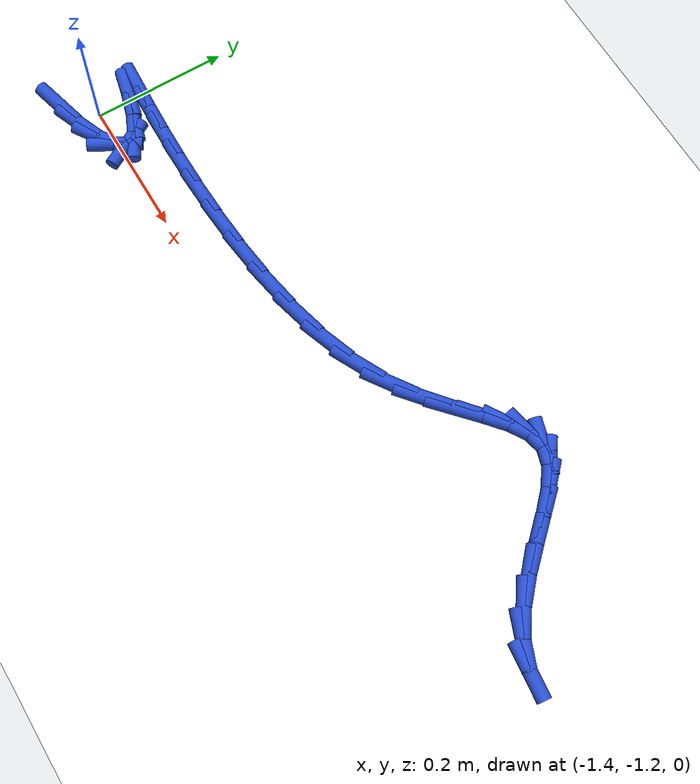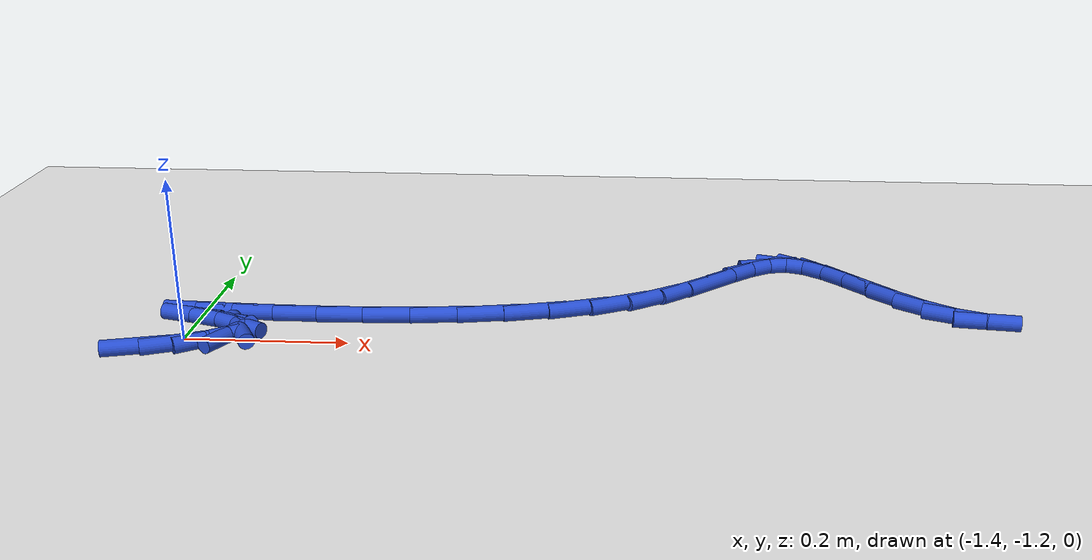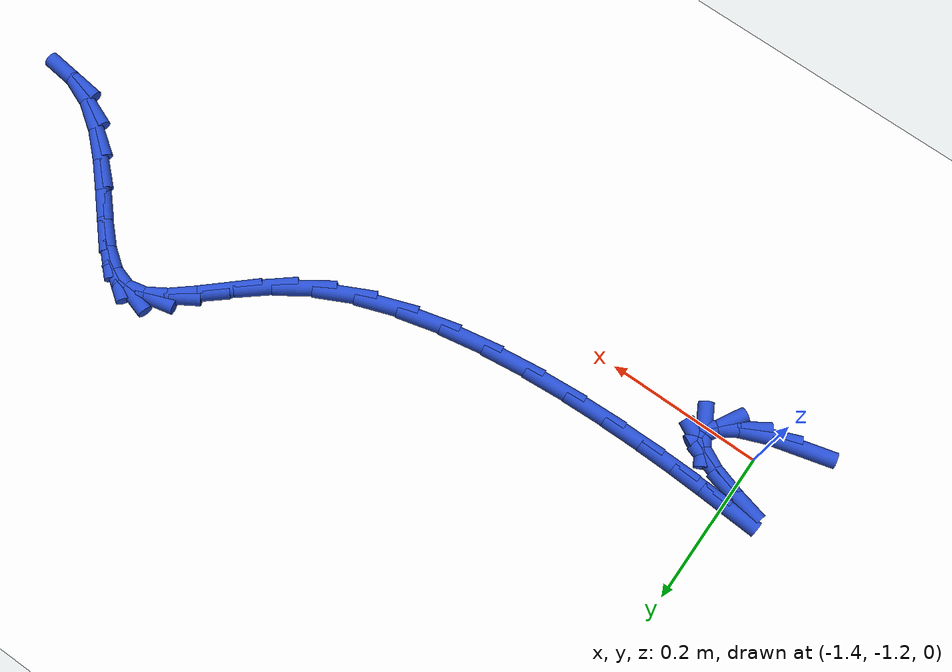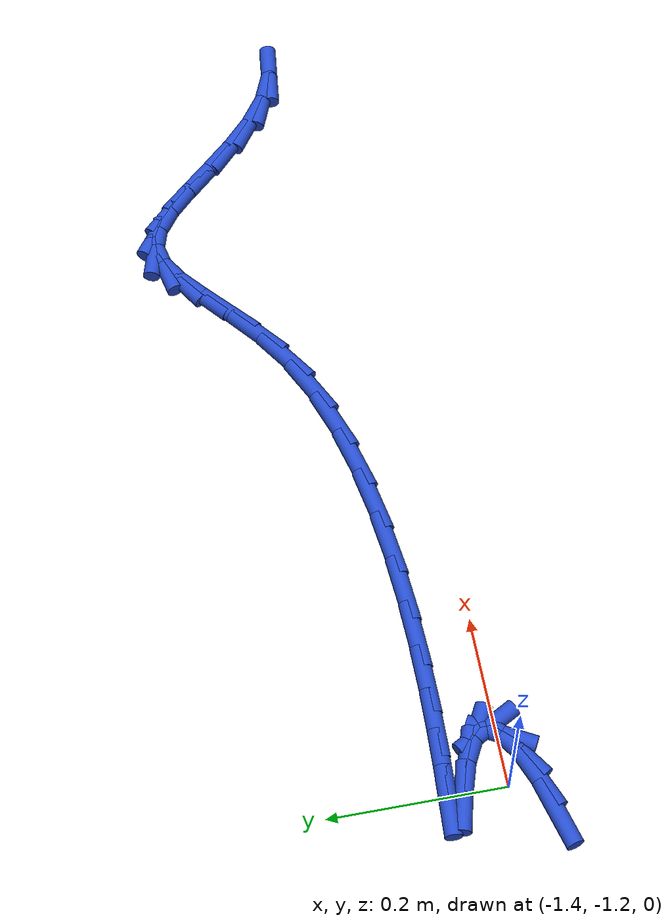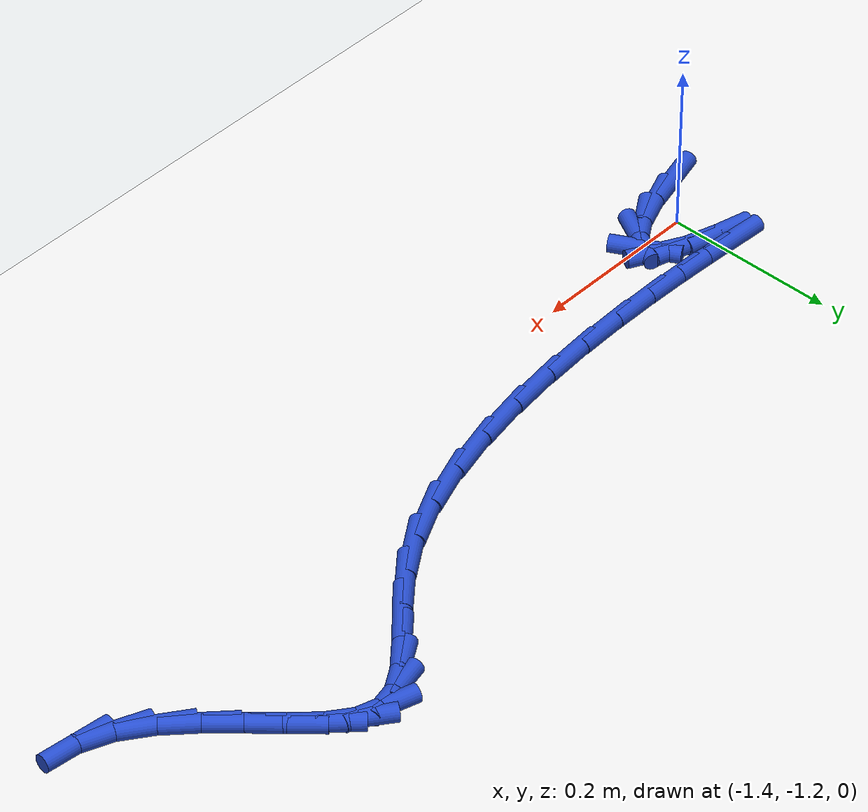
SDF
<sdf version="1.6">
 <world name="default">
  <model name="ground_plane">
   <static>1</static>
   <link name="link">
    <collision name="collision">
     <geometry><plane><normal>0 0 1</normal><size>100 100</size></plane></geometry>
     <surface><friction><ode><mu>100</mu><mu2>50</mu2></ode></friction></surface>
    </collision>
    <visual name="visual">
     <cast_shadows>0</cast_shadows>
     <geometry><plane><normal>0 0 1</normal><size>100 100</size></plane></geometry>
     <material>
      <script><uri>file://media/materials/scripts/gazebo.material</uri><name>Gazebo/WhiteGlow</name></script>
     </material>
    </visual>
   </link>
  </model>
  <model name="line">
   <link name="link_195">
    <pose>-1.4416727084216234 -1.2436113780850118 0.01 0 1.57 0.25958202517167384</pose>
    <collision name="collision">
     <geometry><cylinder><radius>0.01</radius><length>0.08</length></cylinder></geometry>
    </collision>
    <visual name="visual">
     <material>
      <script><name>Gazebo/Blue</name><uri>file://media/materials/scripts/gazebo.material</uri></script>
     </material>
     <geometry><cylinder><radius>0.01</radius><length>0.08</length></cylinder></geometry>
    </visual>
   </link>
   <link name="link_196">
    <pose>-1.3989210131738814 -1.232257637763278 0.01 0 1.57 0.3809980978959132</pose>
    <collision name="collision">
     <geometry><cylinder><radius>0.01</radius><length>0.08</length></cylinder></geometry>
    </collision>
    <visual name="visual">
     <material>
      <script><name>Gazebo/Blue</name><uri>file://media/materials/scripts/gazebo.material</uri></script>
     </material>
     <geometry><cylinder><radius>0.01</radius><length>0.08</length></cylinder></geometry>
    </visual>
   </link>
   <link name="link_197">
    <pose>-1.3652002864735506 -1.2187501091264141 0.01 0 1.57 0.5867770392820533</pose>
    <collision name="collision">
     <geometry><cylinder><radius>0.01</radius><length>0.08</length></cylinder></geometry>
    </collision>
    <visual name="visual">
     <material>
      <script><name>Gazebo/Blue</name><uri>file://media/materials/scripts/gazebo.material</uri></script>
     </material>
     <geometry><cylinder><radius>0.01</radius><length>0.08</length></cylinder></geometry>
    </visual>
   </link>
   <link name="link_198">
    <pose>-1.3429527706980953 -1.2039577836864523 0.01 0 1.57 1.0695907180431952</pose>
    <collision name="collision">
     <geometry><cylinder><radius>0.01</radius><length>0.08</length></cylinder></geometry>
    </collision>
    <visual name="visual">
     <material>
      <script><name>Gazebo/Blue</name><uri>file://media/materials/scripts/gazebo.material</uri></script>
     </material>
     <geometry><cylinder><radius>0.01</radius><length>0.08</length></cylinder></geometry>
    </visual>
   </link>
   <link name="link_199">
    <pose>-1.3346207082249828 -1.1887496529554251 0.01 0 1.57 -1.0726265689272834</pose>
    <collision name="collision">
     <geometry><cylinder><radius>0.01</radius><length>0.08</length></cylinder></geometry>
    </collision>
    <visual name="visual">
     <material>
      <script><name>Gazebo/Blue</name><uri>file://media/materials/scripts/gazebo.material</uri></script>
     </material>
     <geometry><cylinder><radius>0.01</radius><length>0.08</length></cylinder></geometry>
    </visual>
   </link>
   <link name="link_200">
    <pose>-1.3426463414316796 -1.1739947084453641 0.01 0 1.57 -0.4810049235382526</pose>
    <collision name="collision">
     <geometry><cylinder><radius>0.01</radius><length>0.08</length></cylinder></geometry>
    </collision>
    <visual name="visual">
     <material>
      <script><name>Gazebo/Blue</name><uri>file://media/materials/scripts/gazebo.material</uri></script>
     </material>
     <geometry><cylinder><radius>0.01</radius><length>0.08</length></cylinder></geometry>
    </visual>
   </link>
   <link name="link_201">
    <pose>-1.368458488971093 -1.16052363756347 0.01 0 1.57 -0.3035071271203881</pose>
    <collision name="collision">
     <geometry><cylinder><radius>0.01</radius><length>0.08</length></cylinder></geometry>
    </collision>
    <visual name="visual">
     <material>
      <script><name>Gazebo/Blue</name><uri>file://media/materials/scripts/gazebo.material</uri></script>
     </material>
     <geometry><cylinder><radius>0.01</radius><length>0.08</length></cylinder></geometry>
    </visual>
   </link>
   <link name="link_202">
    <pose>-1.4056640434480638 -1.148871484475059 0.01 0 1.57 -0.23995336710815945</pose>
    <collision name="collision">
     <geometry><cylinder><radius>0.01</radius><length>0.08</length></cylinder></geometry>
    </collision>
    <visual name="visual">
     <material>
      <script><name>Gazebo/Blue</name><uri>file://media/materials/scripts/gazebo.material</uri></script>
     </material>
     <geometry><cylinder><radius>0.01</radius><length>0.08</length></cylinder></geometry>
    </visual>
   </link>
   <link name="link_210">
    <pose>-1.4076060407466862 -1.1313747856507415 0.01 0 1.57 -0.055539150927710466</pose>
    <collision name="collision">
     <geometry><cylinder><radius>0.01</radius><length>0.08</length></cylinder></geometry>
    </collision>
    <visual name="visual">
     <material>
      <script><name>Gazebo/Blue</name><uri>file://media/materials/scripts/gazebo.material</uri></script>
     </material>
     <geometry><cylinder><radius>0.01</radius><length>0.08</length></cylinder></geometry>
    </visual>
   </link>
   <link name="link_211">
    <pose>-1.3659666833575799 -1.1336897809710251 0.01 0 1.57 -0.039213464462206436</pose>
    <collision name="collision">
     <geometry><cylinder><radius>0.01</radius><length>0.08</length></cylinder></geometry>
    </collision>
    <visual name="visual">
     <material>
      <script><name>Gazebo/Blue</name><uri>file://media/materials/scripts/gazebo.material</uri></script>
     </material>
     <geometry><cylinder><radius>0.01</radius><length>0.08</length></cylinder></geometry>
    </visual>
   </link>
   <link name="link_212">
    <pose>-1.3187300144229446 -1.1355430444254735 0.01 0 1.57 -0.018356718242357226</pose>
    <collision name="collision">
     <geometry><cylinder><radius>0.01</radius><length>0.08</length></cylinder></geometry>
    </collision>
    <visual name="visual">
     <material>
      <script><name>Gazebo/Blue</name><uri>file://media/materials/scripts/gazebo.material</uri></script>
     </material>
     <geometry><cylinder><radius>0.01</radius><length>0.08</length></cylinder></geometry>
    </visual>
   </link>
   <link name="link_213">
    <pose>-1.2670681138630218 -1.1364914939130348 0.01 0 1.57 0.007273771384544709</pose>
    <collision name="collision">
     <geometry><cylinder><radius>0.01</radius><length>0.08</length></cylinder></geometry>
    </collision>
    <visual name="visual">
     <material>
      <script><name>Gazebo/Blue</name><uri>file://media/materials/scripts/gazebo.material</uri></script>
     </material>
     <geometry><cylinder><radius>0.01</radius><length>0.08</length></cylinder></geometry>
    </visual>
   </link>
   <link name="link_214">
    <pose>-1.2121530615980556 -1.1360920473326577 0.01 0 1.57 0.03841221411619305</pose>
    <collision name="collision">
     <geometry><cylinder><radius>0.01</radius><length>0.08</length></cylinder></geometry>
    </collision>
    <visual name="visual">
     <material>
      <script><name>Gazebo/Blue</name><uri>file://media/materials/scripts/gazebo.material</uri></script>
     </material>
     <geometry><cylinder><radius>0.01</radius><length>0.08</length></cylinder></geometry>
    </visual>
   </link>
   <link name="link_215">
    <pose>-1.155156937548288 -1.1339016225832907 0.01 0 1.57 0.07626104178462279</pose>
    <collision name="collision">
     <geometry><cylinder><radius>0.01</radius><length>0.08</length></cylinder></geometry>
    </collision>
    <visual name="visual">
     <material>
      <script><name>Gazebo/Blue</name><uri>file://media/materials/scripts/gazebo.material</uri></script>
     </material>
     <geometry><cylinder><radius>0.01</radius><length>0.08</length></cylinder></geometry>
    </visual>
   </link>
   <link name="link_216">
    <pose>-1.09725182163396 -1.129477137563883 0.01 0 1.57 0.12258451002061796</pose>
    <collision name="collision">
     <geometry><cylinder><radius>0.01</radius><length>0.08</length></cylinder></geometry>
    </collision>
    <visual name="visual">
     <material>
      <script><name>Gazebo/Blue</name><uri>file://media/materials/scripts/gazebo.material</uri></script>
     </material>
     <geometry><cylinder><radius>0.01</radius><length>0.08</length></cylinder></geometry>
    </visual>
   </link>
   <link name="link_217">
    <pose>-1.0396097937753177 -1.1223755101733837 0.01 0 1.57 0.17989522505327185</pose>
    <collision name="collision">
     <geometry><cylinder><radius>0.01</radius><length>0.08</length></cylinder></geometry>
    </collision>
    <visual name="visual">
     <material>
      <script><name>Gazebo/Blue</name><uri>file://media/materials/scripts/gazebo.material</uri></script>
     </material>
     <geometry><cylinder><radius>0.01</radius><length>0.08</length></cylinder></geometry>
    </visual>
   </link>
   <link name="link_218">
    <pose>-0.9834029338926003 -1.1121536583107403 0.01 0 1.57 0.25173198933564933</pose>
    <collision name="collision">
     <geometry><cylinder><radius>0.01</radius><length>0.08</length></cylinder></geometry>
    </collision>
    <visual name="visual">
     <material>
      <script><name>Gazebo/Blue</name><uri>file://media/materials/scripts/gazebo.material</uri></script>
     </material>
     <geometry><cylinder><radius>0.01</radius><length>0.08</length></cylinder></geometry>
    </visual>
   </link>
   <link name="link_219">
    <pose>-0.9298033219060541 -1.0983684998749024 0.01 0 1.57 0.34299881292664114</pose>
    <collision name="collision">
     <geometry><cylinder><radius>0.01</radius><length>0.08</length></cylinder></geometry>
    </collision>
    <visual name="visual">
     <material>
      <script><name>Gazebo/Blue</name><uri>file://media/materials/scripts/gazebo.material</uri></script>
     </material>
     <geometry><cylinder><radius>0.01</radius><length>0.08</length></cylinder></geometry>
    </visual>
   </link>
   <link name="link_220">
    <pose>-0.8799830377359186 -1.0805769527648184 0.01 0 1.57 0.4601930334481998</pose>
    <collision name="collision">
     <geometry><cylinder><radius>0.01</radius><length>0.08</length></cylinder></geometry>
    </collision>
    <visual name="visual">
     <material>
      <script><name>Gazebo/Blue</name><uri>file://media/materials/scripts/gazebo.material</uri></script>
     </material>
     <geometry><cylinder><radius>0.01</radius><length>0.08</length></cylinder></geometry>
    </visual>
   </link>
   <link name="link_221">
    <pose>-0.8351141613024395 -1.0583359348794374 0.01 0 1.57 0.5969386314787813</pose>
    <collision name="collision">
     <geometry><cylinder><radius>0.01</radius><length>0.08</length></cylinder></geometry>
    </collision>
    <visual name="visual">
     <material>
      <script><name>Gazebo/Blue</name><uri>file://media/materials/scripts/gazebo.material</uri></script>
     </material>
     <geometry><cylinder><radius>0.01</radius><length>0.08</length></cylinder></geometry>
    </visual>
   </link>
   <link name="link_222">
    <pose>-0.7960148759574807 -1.031762028717512 0.01 0 1.57 0.6967762757493047</pose>
    <collision name="collision">
     <geometry><cylinder><radius>0.01</radius><length>0.08</length></cylinder></geometry>
    </collision>
    <visual name="visual">
     <material>
      <script><name>Gazebo/Blue</name><uri>file://media/materials/scripts/gazebo.material</uri></script>
     </material>
     <geometry><cylinder><radius>0.01</radius><length>0.08</length></cylinder></geometry>
    </visual>
   </link>
   <link name="link_223">
    <pose>-0.7620209474399252 -1.0033161646304019 0.01 0 1.57 0.7382564484954316</pose>
    <collision name="collision">
     <geometry><cylinder><radius>0.01</radius><length>0.08</length></cylinder></geometry>
    </collision>
    <visual name="visual">
     <material>
      <script><name>Gazebo/Blue</name><uri>file://media/materials/scripts/gazebo.material</uri></script>
     </material>
     <geometry><cylinder><radius>0.01</radius><length>0.08</length></cylinder></geometry>
    </visual>
   </link>
   <link name="link_224">
    <pose>-0.7320800479454576 -0.9760730178795508 0.01 0 1.57 0.7059271407984382</pose>
    <collision name="collision">
     <geometry><cylinder><radius>0.01</radius><length>0.08</length></cylinder></geometry>
    </collision>
    <visual name="visual">
     <material>
      <script><name>Gazebo/Blue</name><uri>file://media/materials/scripts/gazebo.material</uri></script>
     </material>
     <geometry><cylinder><radius>0.01</radius><length>0.08</length></cylinder></geometry>
    </visual>
   </link>
   <link name="link_225">
    <pose>-0.7051398483224015 -0.9531072658571769 0.01 0 1.57 0.5584205212401304</pose>
    <collision name="collision">
     <geometry><cylinder><radius>0.01</radius><length>0.08</length></cylinder></geometry>
    </collision>
    <visual name="visual">
     <material>
      <script><name>Gazebo/Blue</name><uri>file://media/materials/scripts/gazebo.material</uri></script>
     </material>
     <geometry><cylinder><radius>0.01</radius><length>0.08</length></cylinder></geometry>
    </visual>
   </link>
   <link name="link_226">
    <pose>-0.6801480194190783 -0.937493585955495 0.01 0 1.57 0.21202748353931808</pose>
    <collision name="collision">
     <geometry><cylinder><radius>0.01</radius><length>0.08</length></cylinder></geometry>
    </collision>
    <visual name="visual">
     <material>
      <script><name>Gazebo/Blue</name><uri>file://media/materials/scripts/gazebo.material</uri></script>
     </material>
     <geometry><cylinder><radius>0.01</radius><length>0.08</length></cylinder></geometry>
    </visual>
   </link>
   <link name="link_227">
    <pose>-0.6560522320838094 -0.9323066555667211 0.01 0 1.57 -0.29983611496172474</pose>
    <collision name="collision">
     <geometry><cylinder><radius>0.01</radius><length>0.08</length></cylinder></geometry>
    </collision>
    <visual name="visual">
     <material>
      <script><name>Gazebo/Blue</name><uri>file://media/materials/scripts/gazebo.material</uri></script>
     </material>
     <geometry><cylinder><radius>0.01</radius><length>0.08</length></cylinder></geometry>
    </visual>
   </link>
   <link name="link_228">
    <pose>-0.6318964521921807 -0.9397745765632326 0.01 0 1.57 -0.6342836371409852</pose>
    <collision name="collision">
     <geometry><cylinder><radius>0.01</radius><length>0.08</length></cylinder></geometry>
    </collision>
    <visual name="visual">
     <material>
      <script><name>Gazebo/Blue</name><uri>file://media/materials/scripts/gazebo.material</uri></script>
     </material>
     <geometry><cylinder><radius>0.01</radius><length>0.08</length></cylinder></geometry>
    </visual>
   </link>
   <link name="link_229">
    <pose>-0.6072003378471785 -0.957943413529049 0.01 0 1.57 -0.7865031138391622</pose>
    <collision name="collision">
     <geometry><cylinder><radius>0.01</radius><length>0.08</length></cylinder></geometry>
    </collision>
    <visual name="visual">
     <material>
      <script><name>Gazebo/Blue</name><uri>file://media/materials/scripts/gazebo.material</uri></script>
     </material>
     <geometry><cylinder><radius>0.01</radius><length>0.08</length></cylinder></geometry>
    </visual>
   </link>
   <link name="link_230">
    <pose>-0.5816301761885021 -0.9835701452406918 0.01 0 1.57 -0.8394501720163892</pose>
    <collision name="collision">
     <geometry><cylinder><radius>0.01</radius><length>0.08</length></cylinder></geometry>
    </collision>
    <visual name="visual">
     <material>
      <script><name>Gazebo/Blue</name><uri>file://media/materials/scripts/gazebo.material</uri></script>
     </material>
     <geometry><cylinder><radius>0.01</radius><length>0.08</length></cylinder></geometry>
    </visual>
   </link>
   <link name="link_231">
    <pose>-0.5548522957108835 -1.0134113869028398 0.01 0 1.57 -0.827535003045422</pose>
    <collision name="collision">
     <geometry><cylinder><radius>0.01</radius><length>0.08</length></cylinder></geometry>
    </collision>
    <visual name="visual">
     <material>
      <script><name>Gazebo/Blue</name><uri>file://media/materials/scripts/gazebo.material</uri></script>
     </material>
     <geometry><cylinder><radius>0.01</radius><length>0.08</length></cylinder></geometry>
    </visual>
   </link>
   <link name="link_232">
    <pose>-0.5265330249090578 -1.0442237537201686 0.01 0 1.57 -0.7572411184137372</pose>
    <collision name="collision">
     <geometry><cylinder><radius>0.01</radius><length>0.08</length></cylinder></geometry>
    </collision>
    <visual name="visual">
     <material>
      <script><name>Gazebo/Blue</name><uri>file://media/materials/scripts/gazebo.material</uri></script>
     </material>
     <geometry><cylinder><radius>0.01</radius><length>0.08</length></cylinder></geometry>
    </visual>
   </link>
   <link name="link_233">
    <pose>-0.4963386922777572 -1.0727638608973566 0.01 0 1.57 -0.6177809838950507</pose>
    <collision name="collision">
     <geometry><cylinder><radius>0.01</radius><length>0.08</length></cylinder></geometry>
    </collision>
    <visual name="visual">
     <material>
      <script><name>Gazebo/Blue</name><uri>file://media/materials/scripts/gazebo.material</uri></script>
     </material>
     <geometry><cylinder><radius>0.01</radius><length>0.08</length></cylinder></geometry>
    </visual>
   </link>
   <link name="link_234">
    <pose>-0.4639356263117171 -1.0957883236390795 0.01 0 1.57 -0.3888760427770016</pose>
    <collision name="collision">
     <geometry><cylinder><radius>0.01</radius><length>0.08</length></cylinder></geometry>
    </collision>
    <visual name="visual">
     <material>
      <script><name>Gazebo/Blue</name><uri>file://media/materials/scripts/gazebo.material</uri></script>
     </material>
     <geometry><cylinder><radius>0.01</radius><length>0.08</length></cylinder></geometry>
    </visual>
   </link>
   <link name="link_235">
    <pose>-0.42900885062769195 -1.1100992784556662 0.01 0 1.57 -0.11764532737182894</pose>
    <collision name="collision">
     <geometry><cylinder><radius>0.01</radius><length>0.08</length></cylinder></geometry>
    </collision>
    <visual name="visual">
     <material>
      <script><name>Gazebo/Blue</name><uri>file://media/materials/scripts/gazebo.material</uri></script>
     </material>
     <geometry><cylinder><radius>0.01</radius><length>0.08</length></cylinder></geometry>
    </visual>
   </link>
  </model>
 </world>
</sdf>
